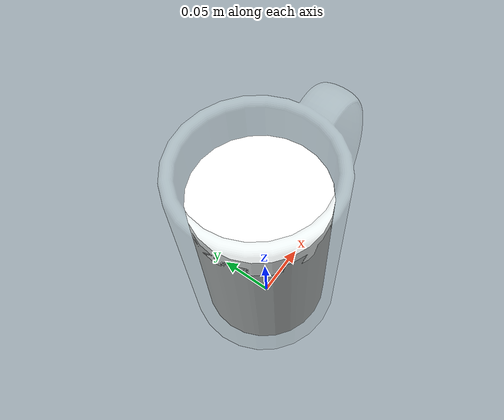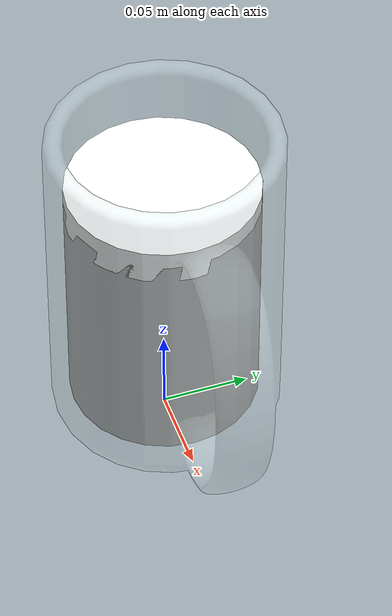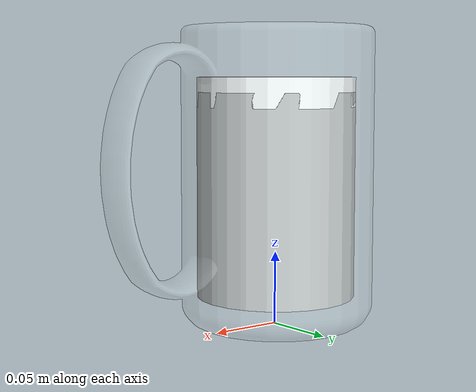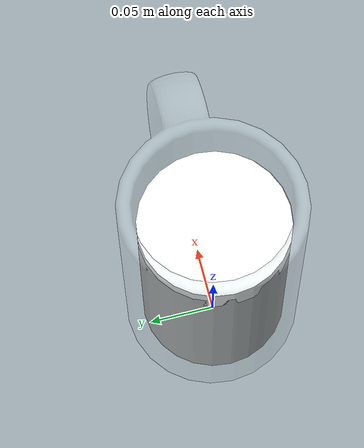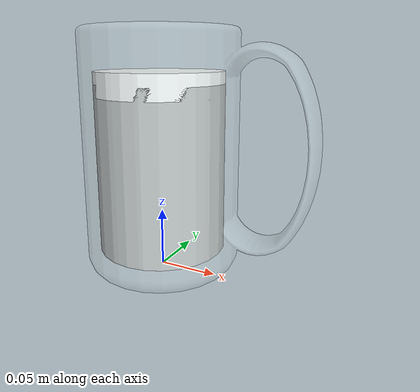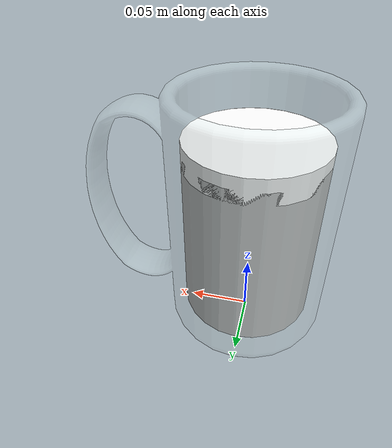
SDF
<?xml version='1.0'?>
<sdf version='1.6'>
  <model name='mug_beer'>
    <link name="body">
      <!-- Position will be set by spawn script -->
      <pose>0 0 0 0 0 0</pose>

      <!-- ========= VISUALS ========= -->
      <visual name="mug_visual">
        <geometry>
          <mesh>
            <uri>model://mug_beer/meshes/cup2.dae</uri>
            <scale>1 1 1</scale>
          </mesh>
        </geometry>
        <material>
          <lighting>1</lighting>
          <ambient>0.854 0.945 0.945 1</ambient>
          <diffuse>0.854 0.945 0.945 1</diffuse>
          <specular>0.01 0.01 0.01 1</specular>
          <emissive>0 0 0 1</emissive>
          <shader type='vertex'>
            <normal_map>__default__</normal_map>
          </shader>
        </material>
        <cast_shadows>1</cast_shadows>
        <transparency>0.75</transparency>
      </visual>

      <visual name="beer_content_visual">
        <pose>0 0 0.09 0 0 0</pose>
        <geometry>
          <cylinder>
            <radius>0.054</radius>
            <length>0.14</length>
          </cylinder>
        </geometry>
        <material>
          <script>
            <uri>model://mug_beer/materials/scripts</uri>
            <uri>model://mug_beer/materials/textures</uri>
            <name>beer</name>
          </script>
        </material>
        <cast_shadows>1</cast_shadows>
        <transparency>0</transparency>
      </visual>

      <visual name="foam_visual">
        <pose>0 0 0.160 0 0 0</pose>
        <geometry>
          <cylinder>
            <radius>0.054</radius>
            <length>0.02</length>
          </cylinder>
        </geometry>
        <material>
          <lighting>1</lighting>
          <ambient>1 1 1 1</ambient>
          <diffuse>1 1 1 1</diffuse>
          <specular>0.01 0.01 0.01 1</specular>
          <emissive>0 0 0 1</emissive>
          <shader type='vertex'>
            <normal_map>__default__</normal_map>
          </shader>
        </material>
        <cast_shadows>1</cast_shadows>
        <transparency>0</transparency>
      </visual>

      <!-- ========= COLLISION ========= -->
      <collision name='collision'>
        <laser_retro>0</laser_retro>
        <max_contacts>10</max_contacts>
        <pose>0 0 0 0 0 0</pose>
        <geometry>
          <mesh>
            <uri>model://mug_beer/meshes/cup2.dae</uri>
            <scale>1 1 1</scale>
          </mesh>
        </geometry>
        <surface>
          <contact>
            <ode>
              <kp>1e7</kp>
              <kd>1.0</kd>
              <max_vel>0.2</max_vel>
              <min_depth>0.001</min_depth>
            </ode>
          </contact>
          <friction>
            <ode>
              <mu>0.6</mu>
              <mu2>0.6</mu2>
            </ode>
          </friction>
        </surface>
      </collision>

      <!-- ========= INERTIA ========= -->
      <inertial auto="true"/>
    </link>

    <static>0</static>
    <allow_auto_disable>1</allow_auto_disable>
  </model>
</sdf>
